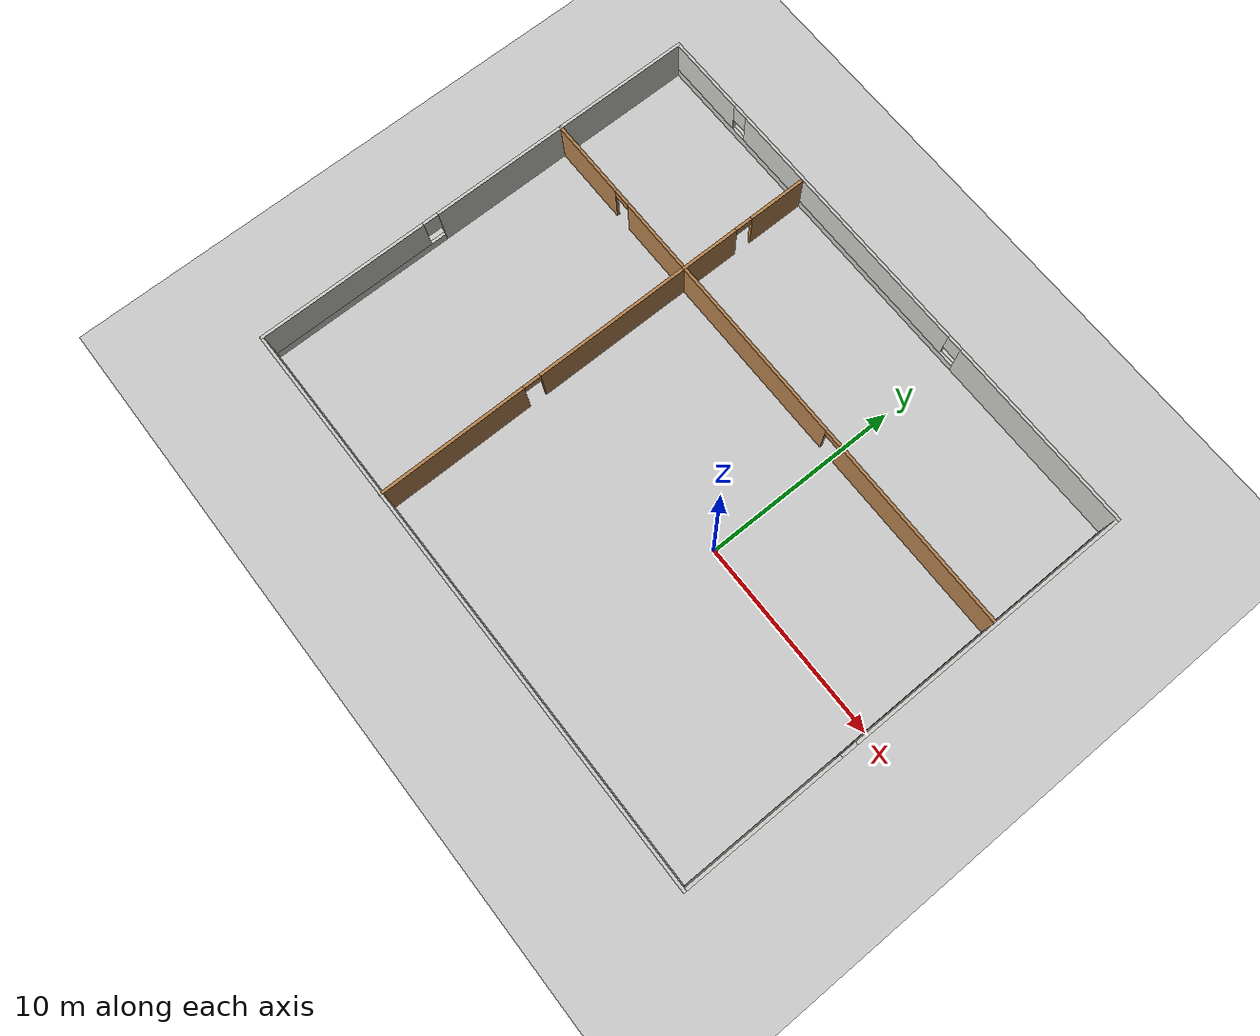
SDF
<sdf version="1.7">
 <world name="default">
  <light name="sun" type="directional">
   <pose>0 0 10 0 -0 0</pose>
   <diffuse>0.8 0.8 0.8 1</diffuse>
   <specular>0.2 0.2 0.2 1</specular>
   <attenuation>
    <range>1000</range>
    <constant>0.9</constant>
    <linear>0.01</linear>
    <quadratic>0.001</quadratic>
   </attenuation>
   <direction>-0.5 0.1 -0.9</direction>
   <spot><inner_angle>0</inner_angle><outer_angle>0</outer_angle><falloff>0</falloff></spot>
  </light>
  <model name="ground_plane">
   <static>1</static>
   <link name="link">
    <collision name="collision">
     <geometry><plane><normal>0 0 1</normal><size>100 100</size></plane></geometry>
     <surface>
      <contact><collide_bitmask>65535</collide_bitmask></contact>
      <friction><ode><mu>100</mu><mu2>50</mu2></ode></friction>
     </surface>
    </collision>
    <visual name="visual">
     <cast_shadows>0</cast_shadows>
     <geometry><plane><normal>0 0 1</normal><size>100 100</size></plane></geometry>
     <material>
      <script><uri>file://media/materials/scripts/gazebo.material</uri><name>Gazebo/Grey</name></script>
     </material>
    </visual>
   </link>
  </model>
  <gravity>0 0 -9.8</gravity>
  <magnetic_field>6e-06 2.3e-05 -4.2e-05</magnetic_field>
  <atmosphere type="adiabatic"/>
  <physics type="ode">
   <max_step_size>0.001</max_step_size>
   <real_time_factor>1</real_time_factor>
   <real_time_update_rate>1000</real_time_update_rate>
  </physics>
  <scene><ambient>0.4 0.4 0.4 1</ambient><background>0.7 0.7 0.7 1</background><shadows>1</shadows></scene>
  <spherical_coordinates>
   <surface_model>EARTH_WGS84</surface_model>
   <latitude_deg>0</latitude_deg>
   <longitude_deg>0</longitude_deg>
   <elevation>0</elevation>
   <heading_deg>0</heading_deg>
  </spherical_coordinates>
  <model name="house_schematics">
   <pose>-4.77265 1.98175 0 0 -0 0</pose>
   <link name="Wall_0">
    <pose>-14.8 0.007089 0 0 -0 -1.5708</pose>
    <visual name="Wall_0_Visual_0">
     <pose>-4.80797 0 1.25 0 -0 0</pose>
     <geometry><box><size>14.1341 0.15 2.5</size></box></geometry>
     <material>
      <script><uri>file://media/materials/scripts/gazebo.material</uri><name>Gazebo/CeilingTiled</name></script>
      <ambient>1 1 1 1</ambient>
     </material>
     <meta><layer>0</layer></meta>
    </visual>
    <collision name="Wall_0_Collision_0">
     <geometry><box><size>14.1341 0.15 2.5</size></box></geometry>
     <pose>-4.80797 0 1.25 0 -0 0</pose>
    </collision>
    <visual name="Wall_0_Visual_1">
     <pose>7.06703 0 0.25 0 -0 0</pose>
     <geometry><box><size>9.61595 0.15 0.5</size></box></geometry>
     <material>
      <script><uri>file://media/materials/scripts/gazebo.material</uri><name>Gazebo/CeilingTiled</name></script>
      <ambient>1 1 1 1</ambient>
     </material>
     <meta><layer>0</layer></meta>
    </visual>
    <collision name="Wall_0_Collision_1">
     <geometry><box><size>9.61595 0.15 0.5</size></box></geometry>
     <pose>7.06703 0 0.25 0 -0 0</pose>
    </collision>
    <visual name="Wall_0_Visual_2">
     <pose>7.46702 0 1.5 0 -0 0</pose>
     <geometry><box><size>8.81595 0.15 2</size></box></geometry>
     <material>
      <script><uri>file://media/materials/scripts/gazebo.material</uri><name>Gazebo/CeilingTiled</name></script>
      <ambient>1 1 1 1</ambient>
     </material>
     <meta><layer>0</layer></meta>
    </visual>
    <collision name="Wall_0_Collision_2">
     <geometry><box><size>8.81595 0.15 2</size></box></geometry>
     <pose>7.46702 0 1.5 0 -0 0</pose>
    </collision>
    <visual name="Wall_0_Visual_3">
     <pose>2.65905 0 1.9 0 -0 0</pose>
     <geometry><box><size>0.8 0.15 1.2</size></box></geometry>
     <material>
      <script><uri>file://media/materials/scripts/gazebo.material</uri><name>Gazebo/CeilingTiled</name></script>
      <ambient>1 1 1 1</ambient>
     </material>
     <meta><layer>0</layer></meta>
    </visual>
    <collision name="Wall_0_Collision_3">
     <geometry><box><size>0.8 0.15 1.2</size></box></geometry>
     <pose>2.65905 0 1.9 0 -0 0</pose>
    </collision>
   </link>
   <link name="Wall_1">
    <collision name="Wall_1_Collision">
     <geometry><box><size>29.75 0.15 2.5</size></box></geometry>
     <pose>0 0 1.25 0 -0 0</pose>
    </collision>
    <visual name="Wall_1_Visual">
     <pose>0 0 1.25 0 -0 0</pose>
     <geometry><box><size>29.75 0.15 2.5</size></box></geometry>
     <material>
      <script><uri>file://media/materials/scripts/gazebo.material</uri><name>Gazebo/CeilingTiled</name></script>
      <ambient>1 1 1 1</ambient>
     </material>
     <meta><layer>0</layer></meta>
    </visual>
    <pose>0 -11.7929 0 0 -0 0</pose>
   </link>
   <link name="Wall_10">
    <pose>-5.7 -3.50709 0 0 -0 -1.5708</pose>
    <visual name="Wall_10_Visual_0">
     <pose>-4.28631 0 1.25 0 -0 0</pose>
     <geometry><box><size>8.17737 0.15 2.5</size></box></geometry>
     <material>
      <script><uri>file://media/materials/scripts/gazebo.material</uri><name>Gazebo/Wood</name></script>
      <ambient>1 1 1 1</ambient>
     </material>
     <meta><layer>0</layer></meta>
    </visual>
    <collision name="Wall_10_Collision_0">
     <geometry><box><size>8.17737 0.15 2.5</size></box></geometry>
     <pose>-4.28631 0 1.25 0 -0 0</pose>
    </collision>
    <visual name="Wall_10_Visual_1">
     <pose>4.53869 0 1.25 0 -0 0</pose>
     <geometry><box><size>7.67263 0.15 2.5</size></box></geometry>
     <material>
      <script><uri>file://media/materials/scripts/gazebo.material</uri><name>Gazebo/Wood</name></script>
      <ambient>1 1 1 1</ambient>
     </material>
     <meta><layer>0</layer></meta>
    </visual>
    <collision name="Wall_10_Collision_1">
     <geometry><box><size>7.67263 0.15 2.5</size></box></geometry>
     <pose>4.53869 0 1.25 0 -0 0</pose>
    </collision>
    <visual name="Wall_10_Visual_2">
     <pose>0.252375 0 2.25 0 -0 0</pose>
     <geometry><box><size>0.9 0.15 0.5</size></box></geometry>
     <material>
      <script><uri>file://media/materials/scripts/gazebo.material</uri><name>Gazebo/Wood</name></script>
      <ambient>1 1 1 1</ambient>
     </material>
     <meta><layer>0</layer></meta>
    </visual>
    <collision name="Wall_10_Collision_2">
     <geometry><box><size>0.9 0.15 0.5</size></box></geometry>
     <pose>0.252375 0 2.25 0 -0 0</pose>
    </collision>
   </link>
   <link name="Wall_12">
    <pose>4.475 4.79291 0 0 -0 0</pose>
    <visual name="Wall_12_Visual_0">
     <pose>-5.32762 0 1.25 0 -0 0</pose>
     <geometry><box><size>9.84475 0.15 2.5</size></box></geometry>
     <material>
      <script><uri>file://media/materials/scripts/gazebo.material</uri><name>Gazebo/Wood</name></script>
      <ambient>1 1 1 1</ambient>
     </material>
     <meta><layer>0</layer></meta>
    </visual>
    <collision name="Wall_12_Collision_0">
     <geometry><box><size>9.84475 0.15 2.5</size></box></geometry>
     <pose>-5.32762 0 1.25 0 -0 0</pose>
    </collision>
    <visual name="Wall_12_Visual_1">
     <pose>5.37238 0 1.25 0 -0 0</pose>
     <geometry><box><size>9.75525 0.15 2.5</size></box></geometry>
     <material>
      <script><uri>file://media/materials/scripts/gazebo.material</uri><name>Gazebo/Wood</name></script>
      <ambient>1 1 1 1</ambient>
     </material>
     <meta><layer>0</layer></meta>
    </visual>
    <collision name="Wall_12_Collision_1">
     <geometry><box><size>9.75525 0.15 2.5</size></box></geometry>
     <pose>5.37238 0 1.25 0 -0 0</pose>
    </collision>
    <visual name="Wall_12_Visual_2">
     <pose>0.044753 0 2.25 0 -0 0</pose>
     <geometry><box><size>0.9 0.15 0.5</size></box></geometry>
     <material>
      <script><uri>file://media/materials/scripts/gazebo.material</uri><name>Gazebo/Wood</name></script>
      <ambient>1 1 1 1</ambient>
     </material>
     <meta><layer>0</layer></meta>
    </visual>
    <collision name="Wall_12_Collision_2">
     <geometry><box><size>0.9 0.15 0.5</size></box></geometry>
     <pose>0.044753 0 2.25 0 -0 0</pose>
    </collision>
   </link>
   <link name="Wall_2">
    <pose>14.8 0.007089 0 0 -0 1.5708</pose>
    <visual name="Wall_2_Visual_0">
     <pose>-7.77466 0 1.25 0 -0 0</pose>
     <geometry><box><size>8.20067 0.15 2.5</size></box></geometry>
     <material>
      <script><uri>file://media/materials/scripts/gazebo.material</uri><name>Gazebo/CeilingTiled</name></script>
      <ambient>1 1 1 1</ambient>
     </material>
     <meta><layer>0</layer></meta>
    </visual>
    <collision name="Wall_2_Collision_0">
     <geometry><box><size>8.20067 0.15 2.5</size></box></geometry>
     <pose>-7.77466 0 1.25 0 -0 0</pose>
    </collision>
    <visual name="Wall_2_Visual_1">
     <pose>4.10034 0 0.25 0 -0 0</pose>
     <geometry><box><size>15.5493 0.15 0.5</size></box></geometry>
     <material>
      <script><uri>file://media/materials/scripts/gazebo.material</uri><name>Gazebo/CeilingTiled</name></script>
      <ambient>1 1 1 1</ambient>
     </material>
     <meta><layer>0</layer></meta>
    </visual>
    <collision name="Wall_2_Collision_1">
     <geometry><box><size>15.5493 0.15 0.5</size></box></geometry>
     <pose>4.10034 0 0.25 0 -0 0</pose>
    </collision>
    <visual name="Wall_2_Visual_2">
     <pose>4.50033 0 1.5 0 -0 0</pose>
     <geometry><box><size>14.7493 0.15 2</size></box></geometry>
     <material>
      <script><uri>file://media/materials/scripts/gazebo.material</uri><name>Gazebo/CeilingTiled</name></script>
      <ambient>1 1 1 1</ambient>
     </material>
     <meta><layer>0</layer></meta>
    </visual>
    <collision name="Wall_2_Collision_2">
     <geometry><box><size>14.7493 0.15 2</size></box></geometry>
     <pose>4.50033 0 1.5 0 -0 0</pose>
    </collision>
    <visual name="Wall_2_Visual_3">
     <pose>-3.27433 0 1.9 0 -0 0</pose>
     <geometry><box><size>0.8 0.15 1.2</size></box></geometry>
     <material>
      <script><uri>file://media/materials/scripts/gazebo.material</uri><name>Gazebo/CeilingTiled</name></script>
      <ambient>1 1 1 1</ambient>
     </material>
     <meta><layer>0</layer></meta>
    </visual>
    <collision name="Wall_2_Collision_3">
     <geometry><box><size>0.8 0.15 1.2</size></box></geometry>
     <pose>-3.27433 0 1.9 0 -0 0</pose>
    </collision>
   </link>
   <link name="Wall_3">
    <pose>0 11.8071 0 0 -0 3.14159</pose>
    <visual name="Wall_3_Visual_0">
     <pose>-9.92814 0 1.25 0 -0 0</pose>
     <geometry><box><size>9.89372 0.15 2.5</size></box></geometry>
     <material>
      <script><uri>file://media/materials/scripts/gazebo.material</uri><name>Gazebo/CeilingTiled</name></script>
      <ambient>1 1 1 1</ambient>
     </material>
     <meta><layer>0</layer></meta>
    </visual>
    <collision name="Wall_3_Collision_0">
     <geometry><box><size>9.89372 0.15 2.5</size></box></geometry>
     <pose>-9.92814 0 1.25 0 -0 0</pose>
    </collision>
    <visual name="Wall_3_Visual_1">
     <pose>4.94686 0 0.25 0 -0 0</pose>
     <geometry><box><size>19.8563 0.15 0.5</size></box></geometry>
     <material>
      <script><uri>file://media/materials/scripts/gazebo.material</uri><name>Gazebo/CeilingTiled</name></script>
      <ambient>1 1 1 1</ambient>
     </material>
     <meta><layer>0</layer></meta>
    </visual>
    <collision name="Wall_3_Collision_1">
     <geometry><box><size>19.8563 0.15 0.5</size></box></geometry>
     <pose>4.94686 0 0.25 0 -0 0</pose>
    </collision>
    <visual name="Wall_3_Visual_2">
     <pose>2.80206 0 1.5 0 -0 0</pose>
     <geometry><box><size>13.9667 0.15 2</size></box></geometry>
     <material>
      <script><uri>file://media/materials/scripts/gazebo.material</uri><name>Gazebo/CeilingTiled</name></script>
      <ambient>1 1 1 1</ambient>
     </material>
     <meta><layer>0</layer></meta>
    </visual>
    <collision name="Wall_3_Collision_2">
     <geometry><box><size>13.9667 0.15 2</size></box></geometry>
     <pose>2.80206 0 1.5 0 -0 0</pose>
    </collision>
    <visual name="Wall_3_Visual_3">
     <pose>12.7302 0 1.5 0 -0 0</pose>
     <geometry><box><size>4.28959 0.15 2</size></box></geometry>
     <material>
      <script><uri>file://media/materials/scripts/gazebo.material</uri><name>Gazebo/CeilingTiled</name></script>
      <ambient>1 1 1 1</ambient>
     </material>
     <meta><layer>0</layer></meta>
    </visual>
    <collision name="Wall_3_Collision_3">
     <geometry><box><size>4.28959 0.15 2</size></box></geometry>
     <pose>12.7302 0 1.5 0 -0 0</pose>
    </collision>
    <visual name="Wall_3_Visual_4">
     <pose>-4.58128 0 1.9 0 -0 0</pose>
     <geometry><box><size>0.8 0.15 1.2</size></box></geometry>
     <material>
      <script><uri>file://media/materials/scripts/gazebo.material</uri><name>Gazebo/CeilingTiled</name></script>
      <ambient>1 1 1 1</ambient>
     </material>
     <meta><layer>0</layer></meta>
    </visual>
    <collision name="Wall_3_Collision_4">
     <geometry><box><size>0.8 0.15 1.2</size></box></geometry>
     <pose>-4.58128 0 1.9 0 -0 0</pose>
    </collision>
    <visual name="Wall_3_Visual_5">
     <pose>10.1854 0 1.9 0 -0 0</pose>
     <geometry><box><size>0.8 0.15 1.2</size></box></geometry>
     <material>
      <script><uri>file://media/materials/scripts/gazebo.material</uri><name>Gazebo/CeilingTiled</name></script>
      <ambient>1 1 1 1</ambient>
     </material>
     <meta><layer>0</layer></meta>
    </visual>
    <collision name="Wall_3_Collision_5">
     <geometry><box><size>0.8 0.15 1.2</size></box></geometry>
     <pose>10.1854 0 1.9 0 -0 0</pose>
    </collision>
   </link>
   <link name="Wall_5">
    <pose>-10.25 4.79291 0 0 -0 0</pose>
    <visual name="Wall_5_Visual_0">
     <pose>-2.50521 0 1.25 0 -0 0</pose>
     <geometry><box><size>4.23959 0.15 2.5</size></box></geometry>
     <material>
      <script><uri>file://media/materials/scripts/gazebo.material</uri><name>Gazebo/Wood</name></script>
      <ambient>1 1 1 1</ambient>
     </material>
     <meta><layer>0</layer></meta>
    </visual>
    <collision name="Wall_5_Collision_0">
     <geometry><box><size>4.23959 0.15 2.5</size></box></geometry>
     <pose>-2.50521 0 1.25 0 -0 0</pose>
    </collision>
    <visual name="Wall_5_Visual_1">
     <pose>2.5698 0 1.25 0 -0 0</pose>
     <geometry><box><size>4.11041 0.15 2.5</size></box></geometry>
     <material>
      <script><uri>file://media/materials/scripts/gazebo.material</uri><name>Gazebo/Wood</name></script>
      <ambient>1 1 1 1</ambient>
     </material>
     <meta><layer>0</layer></meta>
    </visual>
    <collision name="Wall_5_Collision_1">
     <geometry><box><size>4.11041 0.15 2.5</size></box></geometry>
     <pose>2.5698 0 1.25 0 -0 0</pose>
    </collision>
    <visual name="Wall_5_Visual_2">
     <pose>0.06459 0 2.25 0 -0 0</pose>
     <geometry><box><size>0.9 0.15 0.5</size></box></geometry>
     <material>
      <script><uri>file://media/materials/scripts/gazebo.material</uri><name>Gazebo/Wood</name></script>
      <ambient>1 1 1 1</ambient>
     </material>
     <meta><layer>0</layer></meta>
    </visual>
    <collision name="Wall_5_Collision_2">
     <geometry><box><size>0.9 0.15 0.5</size></box></geometry>
     <pose>0.06459 0 2.25 0 -0 0</pose>
    </collision>
   </link>
   <link name="Wall_6">
    <pose>-5.7 8.21791 0 0 -0 1.5708</pose>
    <visual name="Wall_6_Visual_0">
     <pose>-1.96472 0 1.25 0 -0 0</pose>
     <geometry><box><size>3.07056 0.15 2.5</size></box></geometry>
     <material>
      <script><uri>file://media/materials/scripts/gazebo.material</uri><name>Gazebo/Wood</name></script>
      <ambient>1 1 1 1</ambient>
     </material>
     <meta><layer>0</layer></meta>
    </visual>
    <collision name="Wall_6_Collision_0">
     <geometry><box><size>3.07056 0.15 2.5</size></box></geometry>
     <pose>-1.96472 0 1.25 0 -0 0</pose>
    </collision>
    <visual name="Wall_6_Visual_1">
     <pose>1.98528 0 1.25 0 -0 0</pose>
     <geometry><box><size>3.02944 0.15 2.5</size></box></geometry>
     <material>
      <script><uri>file://media/materials/scripts/gazebo.material</uri><name>Gazebo/Wood</name></script>
      <ambient>1 1 1 1</ambient>
     </material>
     <meta><layer>0</layer></meta>
    </visual>
    <collision name="Wall_6_Collision_1">
     <geometry><box><size>3.02944 0.15 2.5</size></box></geometry>
     <pose>1.98528 0 1.25 0 -0 0</pose>
    </collision>
    <visual name="Wall_6_Visual_2">
     <pose>0.020561 0 2.25 0 -0 0</pose>
     <geometry><box><size>0.9 0.15 0.5</size></box></geometry>
     <material>
      <script><uri>file://media/materials/scripts/gazebo.material</uri><name>Gazebo/Wood</name></script>
      <ambient>1 1 1 1</ambient>
     </material>
     <meta><layer>0</layer></meta>
    </visual>
    <collision name="Wall_6_Collision_2">
     <geometry><box><size>0.9 0.15 0.5</size></box></geometry>
     <pose>0.020561 0 2.25 0 -0 0</pose>
    </collision>
   </link>
   <static>1</static>
  </model>
 </world>
</sdf>
